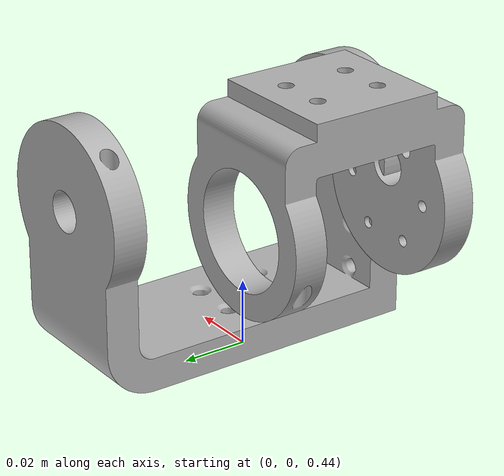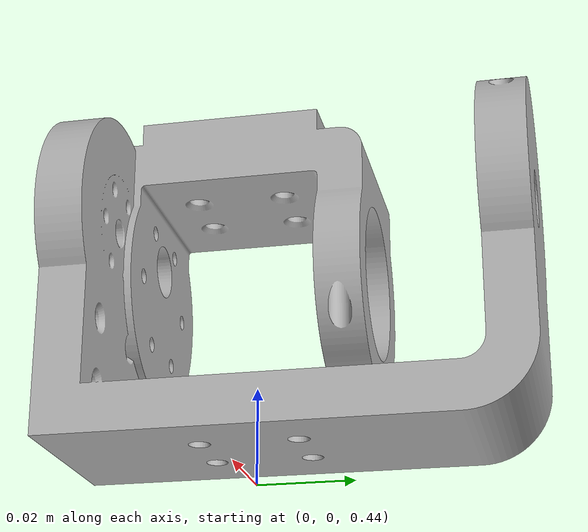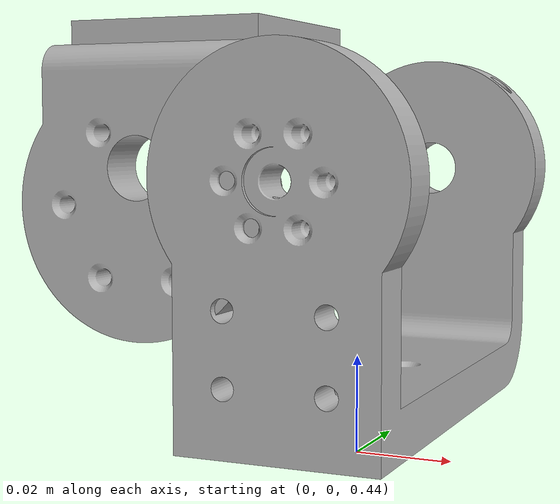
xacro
<?xml version="1.0" ?>
<robot name="test" xmlns:xacro="http://www.ros.org/wiki/xacro">

<xacro:include filename="$(find test_description)/urdf/materials.xacro" />
<xacro:include filename="$(find test_description)/urdf/test.trans" />
<xacro:include filename="$(find test_description)/urdf/test.gazebo" />
<link name="base_link">
  <inertial>
    <origin rpy="0 0 0" xyz="-0.028206969725011053 -0.011117650702406718 0.5144513882765464"/>
    <mass value="0.11215555559606658"/>
    <inertia ixx="5.9e-05" ixy="-0.0" ixz="-0.0" iyy="4.4e-05" iyz="-5e-06" izz="4.9e-05"/>
  </inertial>
  <visual>
    <origin rpy="0 0 0" xyz="0 0 0"/>
    <geometry>
      <mesh filename="package://test_description/meshes/base_link.stl" scale="0.001 0.001 0.001"/>
    </geometry>
    <material name="silver_default"/>
  </visual>
  <collision>
    <origin rpy="0 0 0" xyz="0 0 0"/>
    <geometry>
      <mesh filename="package://test_description/meshes/base_link.stl" scale="0.001 0.001 0.001"/>
    </geometry>
  </collision>
</link>

<link name="link1_1">
  <inertial>
    <origin rpy="0 0 0" xyz="0.028207030275031034 -0.4600316049394919 -0.05689178205624518"/>
    <mass value="0.09007107989785818"/>
    <inertia ixx="0.000176" ixy="0.0" ixz="-0.0" iyy="5.9e-05" iyz="-3e-06" izz="0.000145"/>
  </inertial>
  <visual>
    <origin rpy="0 0 0" xyz="0.056414 -0.4598 -0.531139"/>
    <geometry>
      <mesh filename="package://test_description/meshes/link1_1.stl" scale="0.001 0.001 0.001"/>
    </geometry>
    <material name="silver_default"/>
  </visual>
  <collision>
    <origin rpy="0 0 0" xyz="0.056414 -0.4598 -0.531139"/>
    <geometry>
      <mesh filename="package://test_description/meshes/link1_1.stl" scale="0.001 0.001 0.001"/>
    </geometry>
  </collision>
</link>

<joint name="Rev3" type="continuous">
  <origin rpy="0 0 0" xyz="-0.056414 0.4598 0.531139"/>
  <parent link="base_link"/>
  <child link="link1_1"/>
  <axis xyz="0.0 -1.0 -0.0"/>
</joint>

</robot>

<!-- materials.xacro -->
<robot name="test" xmlns:xacro="http://www.ros.org/wiki/xacro" >

<material name="silver_default">
  <color rgba="0.700 0.700 0.700 1.000"/>
</material>

</robot>

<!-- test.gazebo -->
<robot name="test" xmlns:xacro="http://www.ros.org/wiki/xacro" >

<xacro:property name="body_color" value="Gazebo/Silver" />

<gazebo>
  <plugin filename="libgazebo_ros_control.so" name="control"/>
</gazebo>
<gazebo reference="base_link">
  <material>${body_color}</material>
  <mu1>0.2</mu1>
  <mu2>0.2</mu2>
  <selfCollide>true</selfCollide>
  <gravity>true</gravity>
</gazebo>

<gazebo reference="link1_1">
  <material>${body_color}</material>
  <mu1>0.2</mu1>
  <mu2>0.2</mu2>
  <selfCollide>true</selfCollide>
</gazebo>

</robot>
